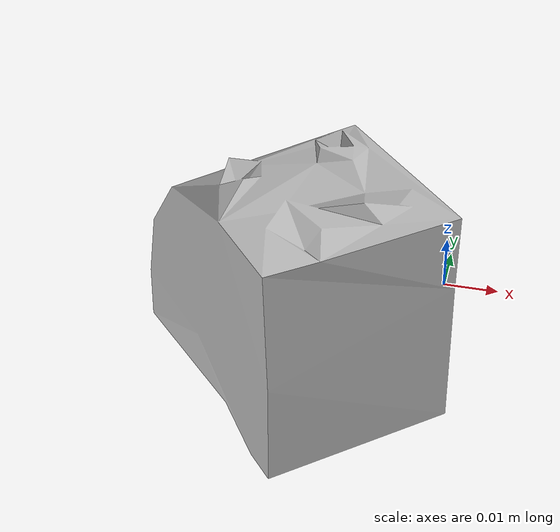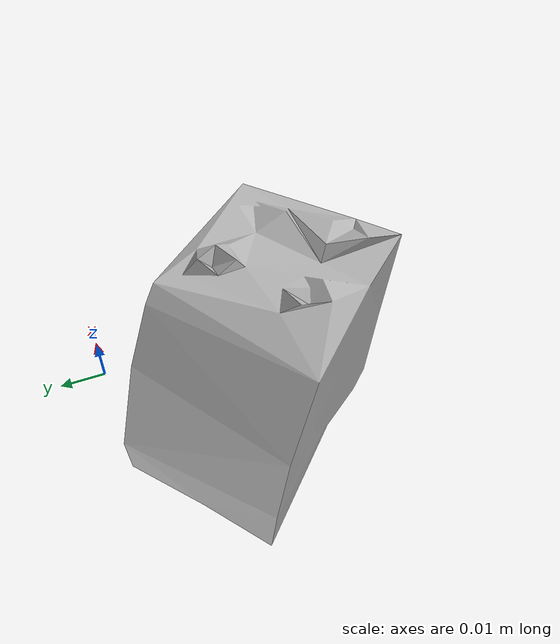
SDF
<?xml version='1.0'?>
<sdf version="1.4">
  <model name="073-d_lego_duplo">
    <static>false</static>
    <link name="link">
      <inertial>
        <pose>-0.020509283636393597 -0.029590994654069693 0.019178263786294433 2.190393673830342 -0.006661664323742012 -2.427838910478005</pose>
        <mass>0.005693867456916415</mass>
        <inertia>
          <ixx>1.7094800555731297e-06</ixx>
          <ixy>-1.4998788186641525e-22</ixy>
          <ixz>-2.4806737086076897e-22</ixz>
          <iyy>1.5096116670434153e-06</iyy>
          <iyz>1.1324921142498163e-22</iyz>
          <izz>1.16539241813699e-06</izz>
        </inertia>
      </inertial>
      <collision name="collision">
        <geometry>
          <mesh>
            <!-- Use a downsampled mesh for collisions -->
            <uri>model:///073-d_lego_duplo/073-d_lego_duplo_250_collision.stl</uri>
	        </mesh>
        </geometry>
        <surface>
      </surface>
      </collision>
      <visual name="visual">
        <geometry>
          <mesh>
            <uri>model:///073-d_lego_duplo/textured.obj</uri>
	        </mesh>
        </geometry>
        <material>
          <script>
            <uri>model:///073-d_lego_duplo/073-d_lego_duplo.material</uri>
            <name>073-d_lego_duplo</name>
          </script>
        </material>
      </visual>
    </link>
  </model>
</sdf>
